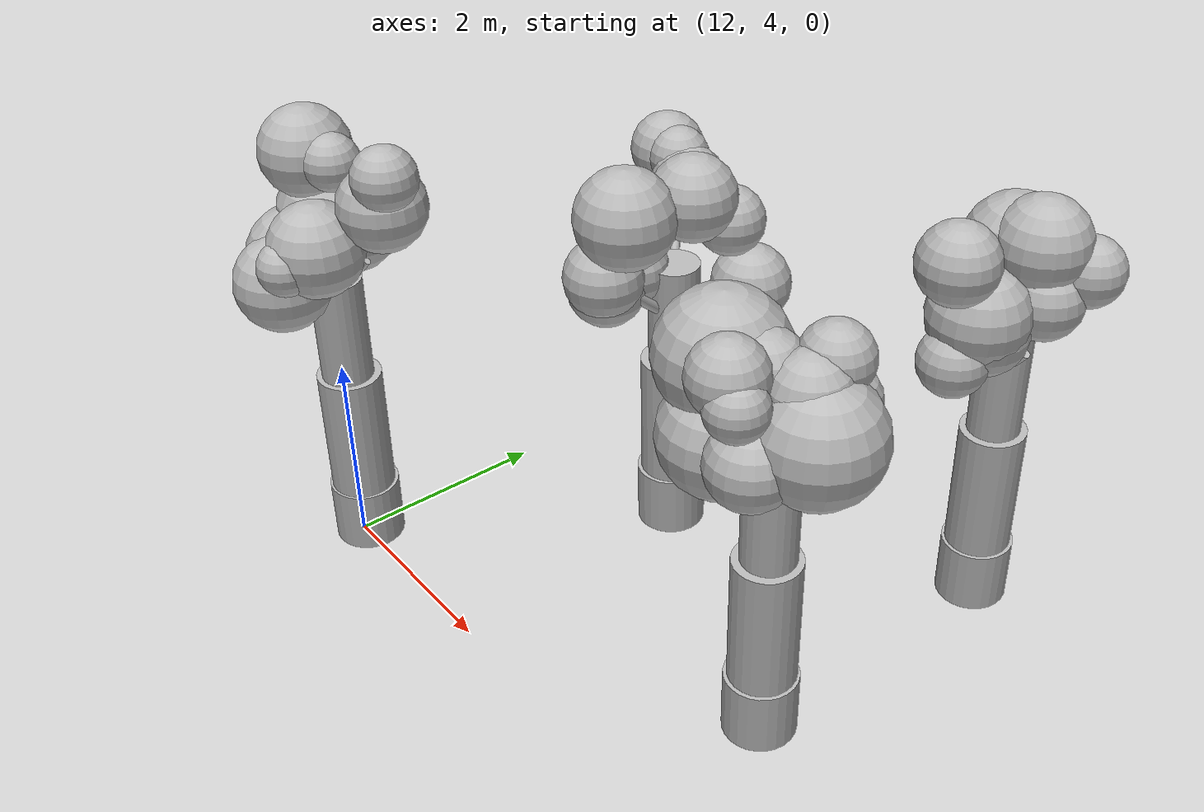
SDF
<sdf version="1.6">
 <world name="default">
  <model name="bush_2">
   <static>true</static>
   <pose>16.6041 5.4304 0 0 0 0</pose>
   <link name="trunk">
    <pose>0 0 1.5000 0 0 0</pose>
    <collision name="trunk_c">
     <geometry><cylinder><radius>0.3500</radius><length>3.0000</length></cylinder></geometry>
    </collision>
   </link>
   <link name="trunk_v0">
    <pose>-0.0008 0.0015 0.3100 0 0 0</pose>
    <visual name="trunk_v0_v">
     <geometry><cylinder><radius>0.3448</radius><length>0.6448</length></cylinder></geometry>
     <material>
      <script>
       <uri>model://bushfire/materials/scripts</uri>
       <uri>model://bushfire/materials/textures</uri>
       <name>Bushfire/CharBark</name>
      </script>
     </material>
    </visual>
   </link>
   <link name="trunk_v1">
    <pose>-0.0054 0.0111 1.2700 0 0 0</pose>
    <visual name="trunk_v1_v">
     <geometry><cylinder><radius>0.3150</radius><length>1.3520</length></cylinder></geometry>
     <material>
      <script>
       <uri>model://bushfire/materials/scripts</uri>
       <uri>model://bushfire/materials/textures</uri>
       <name>Bushfire/BarkStringy</name>
      </script>
     </material>
    </visual>
   </link>
   <link name="trunk_v2">
    <pose>-0.0137 0.0281 2.4600 0 0 0</pose>
    <visual name="trunk_v2_v">
     <geometry><cylinder><radius>0.2520</radius><length>1.1232</length></cylinder></geometry>
     <material>
      <script>
       <uri>model://bushfire/materials/scripts</uri>
       <uri>model://bushfire/materials/textures</uri>
       <name>Bushfire/BarkStringy</name>
      </script>
     </material>
    </visual>
   </link>
   <link name="branch0">
    <pose>0.0659 0.2339 3.2236 0 0.5591 1.2960</pose>
    <visual name="branch0_v">
     <geometry><cylinder><radius>0.0435</radius><length>0.9163</length></cylinder></geometry>
     <material>
      <script>
       <uri>model://bushfire/materials/scripts</uri>
       <uri>model://bushfire/materials/textures</uri>
       <name>Bushfire/BarkStringy</name>
      </script>
     </material>
    </visual>
   </link>
   <link name="branch1">
    <pose>-0.3755 -0.0666 2.8177 0 0.9873 3.3171</pose>
    <visual name="branch1_v">
     <geometry><cylinder><radius>0.0374</radius><length>0.9140</length></cylinder></geometry>
     <material>
      <script>
       <uri>model://bushfire/materials/scripts</uri>
       <uri>model://bushfire/materials/textures</uri>
       <name>Bushfire/BarkStringy</name>
      </script>
     </material>
    </visual>
   </link>
   <link name="branch2">
    <pose>0.1833 -0.2209 2.9889 0 0.9797 5.4052</pose>
    <visual name="branch2_v">
     <geometry><cylinder><radius>0.0389</radius><length>0.6915</length></cylinder></geometry>
     <material>
      <script>
       <uri>model://bushfire/materials/scripts</uri>
       <uri>model://bushfire/materials/textures</uri>
       <name>Bushfire/BarkStringy</name>
      </script>
     </material>
    </visual>
   </link>
   <link name="foliage0">
    <pose>0.3109 0.0644 3.7883 0 0 0</pose>
    <visual name="foliage0_v">
     <geometry><sphere><radius>0.3800</radius></sphere></geometry>
     <material>
      <script>
       <uri>model://bushfire/materials/scripts</uri>
       <uri>model://bushfire/materials/textures</uri>
       <name>Bushfire/Foliage0</name>
      </script>
     </material>
    </visual>
   </link>
   <link name="foliage1">
    <pose>-0.3239 -0.2561 3.1882 0 0 0</pose>
    <visual name="foliage1_v">
     <geometry><sphere><radius>0.5482</radius></sphere></geometry>
     <material>
      <script>
       <uri>model://bushfire/materials/scripts</uri>
       <uri>model://bushfire/materials/textures</uri>
       <name>Bushfire/Foliage1</name>
      </script>
     </material>
    </visual>
   </link>
   <link name="foliage2">
    <pose>0.2206 -0.4278 3.2971 0 0 0</pose>
    <visual name="foliage2_v">
     <geometry><sphere><radius>0.3859</radius></sphere></geometry>
     <material>
      <script>
       <uri>model://bushfire/materials/scripts</uri>
       <uri>model://bushfire/materials/textures</uri>
       <name>Bushfire/Foliage1</name>
      </script>
     </material>
    </visual>
   </link>
   <link name="foliage3">
    <pose>0.2830 0.3467 3.9827 0 0 0</pose>
    <visual name="foliage3_v">
     <geometry><sphere><radius>0.3218</radius></sphere></geometry>
     <material>
      <script>
       <uri>model://bushfire/materials/scripts</uri>
       <uri>model://bushfire/materials/textures</uri>
       <name>Bushfire/Foliage1</name>
      </script>
     </material>
    </visual>
   </link>
   <link name="foliage4">
    <pose>-0.0612 -0.0634 3.8417 0 0 0</pose>
    <visual name="foliage4_v">
     <geometry><sphere><radius>0.3744</radius></sphere></geometry>
     <material>
      <script>
       <uri>model://bushfire/materials/scripts</uri>
       <uri>model://bushfire/materials/textures</uri>
       <name>Bushfire/Foliage2</name>
      </script>
     </material>
    </visual>
   </link>
   <link name="foliage5">
    <pose>0.4557 0.0450 3.4546 0 0 0</pose>
    <visual name="foliage5_v">
     <geometry><sphere><radius>0.5694</radius></sphere></geometry>
     <material>
      <script>
       <uri>model://bushfire/materials/scripts</uri>
       <uri>model://bushfire/materials/textures</uri>
       <name>Bushfire/Foliage0</name>
      </script>
     </material>
    </visual>
   </link>
   <link name="foliage6">
    <pose>0.2167 0.5240 3.4765 0 0 0</pose>
    <visual name="foliage6_v">
     <geometry><sphere><radius>0.3253</radius></sphere></geometry>
     <material>
      <script>
       <uri>model://bushfire/materials/scripts</uri>
       <uri>model://bushfire/materials/textures</uri>
       <name>Bushfire/Foliage0</name>
      </script>
     </material>
    </visual>
   </link>
   <link name="foliage7">
    <pose>-0.6565 0.1383 3.3708 0 0 0</pose>
    <visual name="foliage7_v">
     <geometry><sphere><radius>0.5516</radius></sphere></geometry>
     <material>
      <script>
       <uri>model://bushfire/materials/scripts</uri>
       <uri>model://bushfire/materials/textures</uri>
       <name>Bushfire/Foliage2</name>
      </script>
     </material>
    </visual>
   </link>
   <link name="foliage8">
    <pose>-0.0208 -0.4759 4.0018 0 0 0</pose>
    <visual name="foliage8_v">
     <geometry><sphere><radius>0.3424</radius></sphere></geometry>
     <material>
      <script>
       <uri>model://bushfire/materials/scripts</uri>
       <uri>model://bushfire/materials/textures</uri>
       <name>Bushfire/Foliage2</name>
      </script>
     </material>
    </visual>
   </link>
   <link name="foliage9">
    <pose>-0.0740 -0.0317 3.5020 0 0 0</pose>
    <visual name="foliage9_v">
     <geometry><sphere><radius>0.4279</radius></sphere></geometry>
     <material>
      <script>
       <uri>model://bushfire/materials/scripts</uri>
       <uri>model://bushfire/materials/textures</uri>
       <name>Bushfire/Foliage0</name>
      </script>
     </material>
    </visual>
   </link>
   <link name="foliage10">
    <pose>-0.4777 -0.1298 3.8145 0 0 0</pose>
    <visual name="foliage10_v">
     <geometry><sphere><radius>0.5807</radius></sphere></geometry>
     <material>
      <script>
       <uri>model://bushfire/materials/scripts</uri>
       <uri>model://bushfire/materials/textures</uri>
       <name>Bushfire/Foliage2</name>
      </script>
     </material>
    </visual>
   </link>
   <link name="foliage11">
    <pose>0.1815 -0.5564 3.8517 0 0 0</pose>
    <visual name="foliage11_v">
     <geometry><sphere><radius>0.2700</radius></sphere></geometry>
     <material>
      <script>
       <uri>model://bushfire/materials/scripts</uri>
       <uri>model://bushfire/materials/textures</uri>
       <name>Bushfire/Foliage1</name>
      </script>
     </material>
    </visual>
   </link>
  </model>
  <model name="bush_12">
   <static>true</static>
   <pose>13.7691 6.6708 0 0 0 0</pose>
   <link name="trunk">
    <pose>0 0 1.5000 0 0 0</pose>
    <collision name="trunk_c">
     <geometry><cylinder><radius>0.3500</radius><length>3.0000</length></cylinder></geometry>
    </collision>
   </link>
   <link name="trunk_v0">
    <pose>0.0003 0.0014 0.3100 0 0 0</pose>
    <visual name="trunk_v0_v">
     <geometry><cylinder><radius>0.3448</radius><length>0.6448</length></cylinder></geometry>
     <material>
      <script>
       <uri>model://bushfire/materials/scripts</uri>
       <uri>model://bushfire/materials/textures</uri>
       <name>Bushfire/CharBark</name>
      </script>
     </material>
    </visual>
   </link>
   <link name="trunk_v1">
    <pose>0.0020 0.0103 1.2700 0 0 0</pose>
    <visual name="trunk_v1_v">
     <geometry><cylinder><radius>0.3150</radius><length>1.3520</length></cylinder></geometry>
     <material>
      <script>
       <uri>model://bushfire/materials/scripts</uri>
       <uri>model://bushfire/materials/textures</uri>
       <name>Bushfire/BarkSmooth</name>
      </script>
     </material>
    </visual>
   </link>
   <link name="trunk_v2">
    <pose>0.0050 0.0259 2.4600 0 0 0</pose>
    <visual name="trunk_v2_v">
     <geometry><cylinder><radius>0.2520</radius><length>1.1232</length></cylinder></geometry>
     <material>
      <script>
       <uri>model://bushfire/materials/scripts</uri>
       <uri>model://bushfire/materials/textures</uri>
       <name>Bushfire/BarkSmooth</name>
      </script>
     </material>
    </visual>
   </link>
   <link name="branch0">
    <pose>-0.2270 0.2066 2.7412 0 0.8348 2.4033</pose>
    <visual name="branch0_v">
     <geometry><cylinder><radius>0.0450</radius><length>0.8283</length></cylinder></geometry>
     <material>
      <script>
       <uri>model://bushfire/materials/scripts</uri>
       <uri>model://bushfire/materials/textures</uri>
       <name>Bushfire/BarkSmooth</name>
      </script>
     </material>
    </visual>
   </link>
   <link name="branch1">
    <pose>0.0304 -0.2671 2.6731 0 0.8444 4.8259</pose>
    <visual name="branch1_v">
     <geometry><cylinder><radius>0.0533</radius><length>0.7193</length></cylinder></geometry>
     <material>
      <script>
       <uri>model://bushfire/materials/scripts</uri>
       <uri>model://bushfire/materials/textures</uri>
       <name>Bushfire/BarkSmooth</name>
      </script>
     </material>
    </visual>
   </link>
   <link name="branch2">
    <pose>0.2733 0.1488 2.6826 0 1.0135 6.7818</pose>
    <visual name="branch2_v">
     <geometry><cylinder><radius>0.0429</radius><length>0.7334</length></cylinder></geometry>
     <material>
      <script>
       <uri>model://bushfire/materials/scripts</uri>
       <uri>model://bushfire/materials/textures</uri>
       <name>Bushfire/BarkSmooth</name>
      </script>
     </material>
    </visual>
   </link>
   <link name="foliage0">
    <pose>-0.1690 0.3361 3.7021 0 0 0</pose>
    <visual name="foliage0_v">
     <geometry><sphere><radius>0.3573</radius></sphere></geometry>
     <material>
      <script>
       <uri>model://bushfire/materials/scripts</uri>
       <uri>model://bushfire/materials/textures</uri>
       <name>Bushfire/Foliage1</name>
      </script>
     </material>
    </visual>
   </link>
   <link name="foliage1">
    <pose>-0.2476 -0.2665 2.9552 0 0 0</pose>
    <visual name="foliage1_v">
     <geometry><sphere><radius>0.3436</radius></sphere></geometry>
     <material>
      <script>
       <uri>model://bushfire/materials/scripts</uri>
       <uri>model://bushfire/materials/textures</uri>
       <name>Bushfire/Foliage1</name>
      </script>
     </material>
    </visual>
   </link>
   <link name="foliage2">
    <pose>0.3159 0.4415 3.4747 0 0 0</pose>
    <visual name="foliage2_v">
     <geometry><sphere><radius>0.3381</radius></sphere></geometry>
     <material>
      <script>
       <uri>model://bushfire/materials/scripts</uri>
       <uri>model://bushfire/materials/textures</uri>
       <name>Bushfire/Foliage0</name>
      </script>
     </material>
    </visual>
   </link>
   <link name="foliage3">
    <pose>-0.6147 0.4382 3.8512 0 0 0</pose>
    <visual name="foliage3_v">
     <geometry><sphere><radius>0.3540</radius></sphere></geometry>
     <material>
      <script>
       <uri>model://bushfire/materials/scripts</uri>
       <uri>model://bushfire/materials/textures</uri>
       <name>Bushfire/Foliage1</name>
      </script>
     </material>
    </visual>
   </link>
   <link name="foliage4">
    <pose>-0.1892 -0.6610 3.0257 0 0 0</pose>
    <visual name="foliage4_v">
     <geometry><sphere><radius>0.3905</radius></sphere></geometry>
     <material>
      <script>
       <uri>model://bushfire/materials/scripts</uri>
       <uri>model://bushfire/materials/textures</uri>
       <name>Bushfire/Foliage0</name>
      </script>
     </material>
    </visual>
   </link>
   <link name="foliage5">
    <pose>0.1854 0.1020 3.7689 0 0 0</pose>
    <visual name="foliage5_v">
     <geometry><sphere><radius>0.4199</radius></sphere></geometry>
     <material>
      <script>
       <uri>model://bushfire/materials/scripts</uri>
       <uri>model://bushfire/materials/textures</uri>
       <name>Bushfire/Foliage1</name>
      </script>
     </material>
    </visual>
   </link>
   <link name="foliage6">
    <pose>-0.3737 0.3821 3.8791 0 0 0</pose>
    <visual name="foliage6_v">
     <geometry><sphere><radius>0.2884</radius></sphere></geometry>
     <material>
      <script>
       <uri>model://bushfire/materials/scripts</uri>
       <uri>model://bushfire/materials/textures</uri>
       <name>Bushfire/Foliage1</name>
      </script>
     </material>
    </visual>
   </link>
   <link name="foliage7">
    <pose>-0.2498 -0.5875 2.8635 0 0 0</pose>
    <visual name="foliage7_v">
     <geometry><sphere><radius>0.3836</radius></sphere></geometry>
     <material>
      <script>
       <uri>model://bushfire/materials/scripts</uri>
       <uri>model://bushfire/materials/textures</uri>
       <name>Bushfire/Foliage0</name>
      </script>
     </material>
    </visual>
   </link>
   <link name="foliage8">
    <pose>0.3895 0.6599 2.7426 0 0 0</pose>
    <visual name="foliage8_v">
     <geometry><sphere><radius>0.3965</radius></sphere></geometry>
     <material>
      <script>
       <uri>model://bushfire/materials/scripts</uri>
       <uri>model://bushfire/materials/textures</uri>
       <name>Bushfire/Foliage1</name>
      </script>
     </material>
    </visual>
   </link>
   <link name="foliage9">
    <pose>-0.5340 0.4714 3.3883 0 0 0</pose>
    <visual name="foliage9_v">
     <geometry><sphere><radius>0.4610</radius></sphere></geometry>
     <material>
      <script>
       <uri>model://bushfire/materials/scripts</uri>
       <uri>model://bushfire/materials/textures</uri>
       <name>Bushfire/Foliage0</name>
      </script>
     </material>
    </visual>
   </link>
   <link name="foliage10">
    <pose>0.0311 -0.5649 3.7109 0 0 0</pose>
    <visual name="foliage10_v">
     <geometry><sphere><radius>0.4873</radius></sphere></geometry>
     <material>
      <script>
       <uri>model://bushfire/materials/scripts</uri>
       <uri>model://bushfire/materials/textures</uri>
       <name>Bushfire/Foliage1</name>
      </script>
     </material>
    </visual>
   </link>
  </model>
  <model name="bush_14">
   <static>true</static>
   <pose>12.0261 4.0621 0 0 0 0</pose>
   <link name="trunk">
    <pose>0 0 1.5000 0 0 0</pose>
    <collision name="trunk_c">
     <geometry><cylinder><radius>0.3500</radius><length>3.0000</length></cylinder></geometry>
    </collision>
   </link>
   <link name="trunk_v0">
    <pose>-0.0001 -0.0009 0.3100 0 0 0</pose>
    <visual name="trunk_v0_v">
     <geometry><cylinder><radius>0.3448</radius><length>0.6448</length></cylinder></geometry>
     <material>
      <script>
       <uri>model://bushfire/materials/scripts</uri>
       <uri>model://bushfire/materials/textures</uri>
       <name>Bushfire/CharBark</name>
      </script>
     </material>
    </visual>
   </link>
   <link name="trunk_v1">
    <pose>-0.0011 -0.0066 1.2700 0 0 0</pose>
    <visual name="trunk_v1_v">
     <geometry><cylinder><radius>0.3150</radius><length>1.3520</length></cylinder></geometry>
     <material>
      <script>
       <uri>model://bushfire/materials/scripts</uri>
       <uri>model://bushfire/materials/textures</uri>
       <name>Bushfire/BarkSmooth</name>
      </script>
     </material>
    </visual>
   </link>
   <link name="trunk_v2">
    <pose>-0.0027 -0.0167 2.4600 0 0 0</pose>
    <visual name="trunk_v2_v">
     <geometry><cylinder><radius>0.2520</radius><length>1.1232</length></cylinder></geometry>
     <material>
      <script>
       <uri>model://bushfire/materials/scripts</uri>
       <uri>model://bushfire/materials/textures</uri>
       <name>Bushfire/BarkSmooth</name>
      </script>
     </material>
    </visual>
   </link>
   <link name="branch0">
    <pose>0.2560 0.0423 3.1080 0 0.7281 0.1639</pose>
    <visual name="branch0_v">
     <geometry><cylinder><radius>0.0302</radius><length>0.7798</length></cylinder></geometry>
     <material>
      <script>
       <uri>model://bushfire/materials/scripts</uri>
       <uri>model://bushfire/materials/textures</uri>
       <name>Bushfire/BarkSmooth</name>
      </script>
     </material>
    </visual>
   </link>
   <link name="branch1">
    <pose>-0.1127 0.1622 3.1118 0 0.5225 2.1780</pose>
    <visual name="branch1_v">
     <geometry><cylinder><radius>0.0429</radius><length>0.7916</length></cylinder></geometry>
     <material>
      <script>
       <uri>model://bushfire/materials/scripts</uri>
       <uri>model://bushfire/materials/textures</uri>
       <name>Bushfire/BarkSmooth</name>
      </script>
     </material>
    </visual>
   </link>
   <link name="branch2">
    <pose>0.0005 -0.2382 2.8373 0 0.5942 4.7146</pose>
    <visual name="branch2_v">
     <geometry><cylinder><radius>0.0511</radius><length>0.8508</length></cylinder></geometry>
     <material>
      <script>
       <uri>model://bushfire/materials/scripts</uri>
       <uri>model://bushfire/materials/textures</uri>
       <name>Bushfire/BarkSmooth</name>
      </script>
     </material>
    </visual>
   </link>
   <link name="foliage0">
    <pose>0.1879 -0.2439 3.4967 0 0 0</pose>
    <visual name="foliage0_v">
     <geometry><sphere><radius>0.4539</radius></sphere></geometry>
     <material>
      <script>
       <uri>model://bushfire/materials/scripts</uri>
       <uri>model://bushfire/materials/textures</uri>
       <name>Bushfire/Foliage2</name>
      </script>
     </material>
    </visual>
   </link>
   <link name="foliage1">
    <pose>-0.1383 0.2876 3.4364 0 0 0</pose>
    <visual name="foliage1_v">
     <geometry><sphere><radius>0.4595</radius></sphere></geometry>
     <material>
      <script>
       <uri>model://bushfire/materials/scripts</uri>
       <uri>model://bushfire/materials/textures</uri>
       <name>Bushfire/Foliage0</name>
      </script>
     </material>
    </visual>
   </link>
   <link name="foliage2">
    <pose>-0.3004 -0.1851 3.1742 0 0 0</pose>
    <visual name="foliage2_v">
     <geometry><sphere><radius>0.5106</radius></sphere></geometry>
     <material>
      <script>
       <uri>model://bushfire/materials/scripts</uri>
       <uri>model://bushfire/materials/textures</uri>
       <name>Bushfire/Foliage2</name>
      </script>
     </material>
    </visual>
   </link>
   <link name="foliage3">
    <pose>0.0588 0.0761 4.2129 0 0 0</pose>
    <visual name="foliage3_v">
     <geometry><sphere><radius>0.2703</radius></sphere></geometry>
     <material>
      <script>
       <uri>model://bushfire/materials/scripts</uri>
       <uri>model://bushfire/materials/textures</uri>
       <name>Bushfire/Foliage2</name>
      </script>
     </material>
    </visual>
   </link>
   <link name="foliage4">
    <pose>-0.0752 0.5492 3.6859 0 0 0</pose>
    <visual name="foliage4_v">
     <geometry><sphere><radius>0.3720</radius></sphere></geometry>
     <material>
      <script>
       <uri>model://bushfire/materials/scripts</uri>
       <uri>model://bushfire/materials/textures</uri>
       <name>Bushfire/Foliage0</name>
      </script>
     </material>
    </visual>
   </link>
   <link name="foliage5">
    <pose>0.1960 -0.5675 3.4200 0 0 0</pose>
    <visual name="foliage5_v">
     <geometry><sphere><radius>0.2605</radius></sphere></geometry>
     <material>
      <script>
       <uri>model://bushfire/materials/scripts</uri>
       <uri>model://bushfire/materials/textures</uri>
       <name>Bushfire/Foliage1</name>
      </script>
     </material>
    </visual>
   </link>
   <link name="foliage6">
    <pose>0.4942 0.3020 3.8755 0 0 0</pose>
    <visual name="foliage6_v">
     <geometry><sphere><radius>0.4216</radius></sphere></geometry>
     <material>
      <script>
       <uri>model://bushfire/materials/scripts</uri>
       <uri>model://bushfire/materials/textures</uri>
       <name>Bushfire/Foliage1</name>
      </script>
     </material>
    </visual>
   </link>
   <link name="foliage7">
    <pose>-0.2710 0.1695 3.5377 0 0 0</pose>
    <visual name="foliage7_v">
     <geometry><sphere><radius>0.5124</radius></sphere></geometry>
     <material>
      <script>
       <uri>model://bushfire/materials/scripts</uri>
       <uri>model://bushfire/materials/textures</uri>
       <name>Bushfire/Foliage0</name>
      </script>
     </material>
    </visual>
   </link>
   <link name="foliage8">
    <pose>-0.1095 -0.4821 3.0927 0 0 0</pose>
    <visual name="foliage8_v">
     <geometry><sphere><radius>0.4597</radius></sphere></geometry>
     <material>
      <script>
       <uri>model://bushfire/materials/scripts</uri>
       <uri>model://bushfire/materials/textures</uri>
       <name>Bushfire/Foliage0</name>
      </script>
     </material>
    </visual>
   </link>
   <link name="foliage9">
    <pose>0.6667 0.2663 4.2353 0 0 0</pose>
    <visual name="foliage9_v">
     <geometry><sphere><radius>0.3063</radius></sphere></geometry>
     <material>
      <script>
       <uri>model://bushfire/materials/scripts</uri>
       <uri>model://bushfire/materials/textures</uri>
       <name>Bushfire/Foliage0</name>
      </script>
     </material>
    </visual>
   </link>
   <link name="foliage10">
    <pose>-0.3128 0.0178 4.1988 0 0 0</pose>
    <visual name="foliage10_v">
     <geometry><sphere><radius>0.4350</radius></sphere></geometry>
     <material>
      <script>
       <uri>model://bushfire/materials/scripts</uri>
       <uri>model://bushfire/materials/textures</uri>
       <name>Bushfire/Foliage0</name>
      </script>
     </material>
    </visual>
   </link>
   <link name="foliage11">
    <pose>-0.3211 -0.2765 3.0564 0 0 0</pose>
    <visual name="foliage11_v">
     <geometry><sphere><radius>0.4060</radius></sphere></geometry>
     <material>
      <script>
       <uri>model://bushfire/materials/scripts</uri>
       <uri>model://bushfire/materials/textures</uri>
       <name>Bushfire/Foliage1</name>
      </script>
     </material>
    </visual>
   </link>
  </model>
  <model name="bush_25">
   <static>true</static>
   <pose>16.5221 8.2878 0 0 0 0</pose>
   <link name="trunk">
    <pose>0 0 1.5000 0 0 0</pose>
    <collision name="trunk_c">
     <geometry><cylinder><radius>0.3500</radius><length>3.0000</length></cylinder></geometry>
    </collision>
   </link>
   <link name="trunk_v0">
    <pose>-0.0010 0.0010 0.3100 0 0 0</pose>
    <visual name="trunk_v0_v">
     <geometry><cylinder><radius>0.3448</radius><length>0.6448</length></cylinder></geometry>
     <material>
      <script>
       <uri>model://bushfire/materials/scripts</uri>
       <uri>model://bushfire/materials/textures</uri>
       <name>Bushfire/CharBark</name>
      </script>
     </material>
    </visual>
   </link>
   <link name="trunk_v1">
    <pose>-0.0075 0.0069 1.2700 0 0 0</pose>
    <visual name="trunk_v1_v">
     <geometry><cylinder><radius>0.3150</radius><length>1.3520</length></cylinder></geometry>
     <material>
      <script>
       <uri>model://bushfire/materials/scripts</uri>
       <uri>model://bushfire/materials/textures</uri>
       <name>Bushfire/BarkSmooth</name>
      </script>
     </material>
    </visual>
   </link>
   <link name="trunk_v2">
    <pose>-0.0189 0.0175 2.4600 0 0 0</pose>
    <visual name="trunk_v2_v">
     <geometry><cylinder><radius>0.2520</radius><length>1.1232</length></cylinder></geometry>
     <material>
      <script>
       <uri>model://bushfire/materials/scripts</uri>
       <uri>model://bushfire/materials/textures</uri>
       <name>Bushfire/BarkSmooth</name>
      </script>
     </material>
    </visual>
   </link>
   <link name="branch0">
    <pose>-0.0955 -0.2214 2.8940 0 0.8984 4.3051</pose>
    <visual name="branch0_v">
     <geometry><cylinder><radius>0.0495</radius><length>0.6165</length></cylinder></geometry>
     <material>
      <script>
       <uri>model://bushfire/materials/scripts</uri>
       <uri>model://bushfire/materials/textures</uri>
       <name>Bushfire/BarkSmooth</name>
      </script>
     </material>
    </visual>
   </link>
   <link name="branch1">
    <pose>0.1791 -0.0855 2.8083 0 0.7296 5.8377</pose>
    <visual name="branch1_v">
     <geometry><cylinder><radius>0.0344</radius><length>0.5956</length></cylinder></geometry>
     <material>
      <script>
       <uri>model://bushfire/materials/scripts</uri>
       <uri>model://bushfire/materials/textures</uri>
       <name>Bushfire/BarkSmooth</name>
      </script>
     </material>
    </visual>
   </link>
   <link name="branch2">
    <pose>0.0749 0.2422 3.1017 0 0.7703 7.5543</pose>
    <visual name="branch2_v">
     <geometry><cylinder><radius>0.0308</radius><length>0.7282</length></cylinder></geometry>
     <material>
      <script>
       <uri>model://bushfire/materials/scripts</uri>
       <uri>model://bushfire/materials/textures</uri>
       <name>Bushfire/BarkSmooth</name>
      </script>
     </material>
    </visual>
   </link>
   <link name="branch3">
    <pose>-0.3014 0.1164 2.6818 0 0.9437 9.0562</pose>
    <visual name="branch3_v">
     <geometry><cylinder><radius>0.0344</radius><length>0.7979</length></cylinder></geometry>
     <material>
      <script>
       <uri>model://bushfire/materials/scripts</uri>
       <uri>model://bushfire/materials/textures</uri>
       <name>Bushfire/BarkSmooth</name>
      </script>
     </material>
    </visual>
   </link>
   <link name="foliage0">
    <pose>-0.0153 -0.4227 3.3554 0 0 0</pose>
    <visual name="foliage0_v">
     <geometry><sphere><radius>0.4750</radius></sphere></geometry>
     <material>
      <script>
       <uri>model://bushfire/materials/scripts</uri>
       <uri>model://bushfire/materials/textures</uri>
       <name>Bushfire/Foliage2</name>
      </script>
     </material>
    </visual>
   </link>
   <link name="foliage1">
    <pose>0.0438 -0.3759 3.1869 0 0 0</pose>
    <visual name="foliage1_v">
     <geometry><sphere><radius>0.3949</radius></sphere></geometry>
     <material>
      <script>
       <uri>model://bushfire/materials/scripts</uri>
       <uri>model://bushfire/materials/textures</uri>
       <name>Bushfire/Foliage2</name>
      </script>
     </material>
    </visual>
   </link>
   <link name="foliage2">
    <pose>0.4091 0.4600 3.6564 0 0 0</pose>
    <visual name="foliage2_v">
     <geometry><sphere><radius>0.3283</radius></sphere></geometry>
     <material>
      <script>
       <uri>model://bushfire/materials/scripts</uri>
       <uri>model://bushfire/materials/textures</uri>
       <name>Bushfire/Foliage0</name>
      </script>
     </material>
    </visual>
   </link>
   <link name="foliage3">
    <pose>-0.3083 0.1707 3.6577 0 0 0</pose>
    <visual name="foliage3_v">
     <geometry><sphere><radius>0.2724</radius></sphere></geometry>
     <material>
      <script>
       <uri>model://bushfire/materials/scripts</uri>
       <uri>model://bushfire/materials/textures</uri>
       <name>Bushfire/Foliage0</name>
      </script>
     </material>
    </visual>
   </link>
   <link name="foliage4">
    <pose>-0.0076 -0.7860 4.0012 0 0 0</pose>
    <visual name="foliage4_v">
     <geometry><sphere><radius>0.3760</radius></sphere></geometry>
     <material>
      <script>
       <uri>model://bushfire/materials/scripts</uri>
       <uri>model://bushfire/materials/textures</uri>
       <name>Bushfire/Foliage0</name>
      </script>
     </material>
    </visual>
   </link>
   <link name="foliage5">
    <pose>-0.1405 0.1860 3.3495 0 0 0</pose>
    <visual name="foliage5_v">
     <geometry><sphere><radius>0.4863</radius></sphere></geometry>
     <material>
      <script>
       <uri>model://bushfire/materials/scripts</uri>
       <uri>model://bushfire/materials/textures</uri>
       <name>Bushfire/Foliage0</name>
      </script>
     </material>
    </visual>
   </link>
   <link name="foliage6">
    <pose>-0.0212 0.2035 3.9417 0 0 0</pose>
    <visual name="foliage6_v">
     <geometry><sphere><radius>0.2822</radius></sphere></geometry>
     <material>
      <script>
       <uri>model://bushfire/materials/scripts</uri>
       <uri>model://bushfire/materials/textures</uri>
       <name>Bushfire/Foliage2</name>
      </script>
     </material>
    </visual>
   </link>
   <link name="foliage7">
    <pose>-0.8868 0.5012 3.1199 0 0 0</pose>
    <visual name="foliage7_v">
     <geometry><sphere><radius>0.2108</radius></sphere></geometry>
     <material>
      <script>
       <uri>model://bushfire/materials/scripts</uri>
       <uri>model://bushfire/materials/textures</uri>
       <name>Bushfire/Foliage0</name>
      </script>
     </material>
    </visual>
   </link>
   <link name="foliage8">
    <pose>-0.0024 -0.7034 2.9947 0 0 0</pose>
    <visual name="foliage8_v">
     <geometry><sphere><radius>0.3285</radius></sphere></geometry>
     <material>
      <script>
       <uri>model://bushfire/materials/scripts</uri>
       <uri>model://bushfire/materials/textures</uri>
       <name>Bushfire/Foliage1</name>
      </script>
     </material>
    </visual>
   </link>
   <link name="foliage9">
    <pose>0.2272 0.1272 3.4162 0 0 0</pose>
    <visual name="foliage9_v">
     <geometry><sphere><radius>0.3751</radius></sphere></geometry>
     <material>
      <script>
       <uri>model://bushfire/materials/scripts</uri>
       <uri>model://bushfire/materials/textures</uri>
       <name>Bushfire/Foliage0</name>
      </script>
     </material>
    </visual>
   </link>
   <link name="foliage10">
    <pose>0.0882 0.1718 3.8893 0 0 0</pose>
    <visual name="foliage10_v">
     <geometry><sphere><radius>0.4470</radius></sphere></geometry>
     <material>
      <script>
       <uri>model://bushfire/materials/scripts</uri>
       <uri>model://bushfire/materials/textures</uri>
       <name>Bushfire/Foliage1</name>
      </script>
     </material>
    </visual>
   </link>
   <link name="foliage11">
    <pose>-0.1930 0.1825 3.7340 0 0 0</pose>
    <visual name="foliage11_v">
     <geometry><sphere><radius>0.5005</radius></sphere></geometry>
     <material>
      <script>
       <uri>model://bushfire/materials/scripts</uri>
       <uri>model://bushfire/materials/textures</uri>
       <name>Bushfire/Foliage2</name>
      </script>
     </material>
    </visual>
   </link>
  </model>
 </world>
</sdf>
